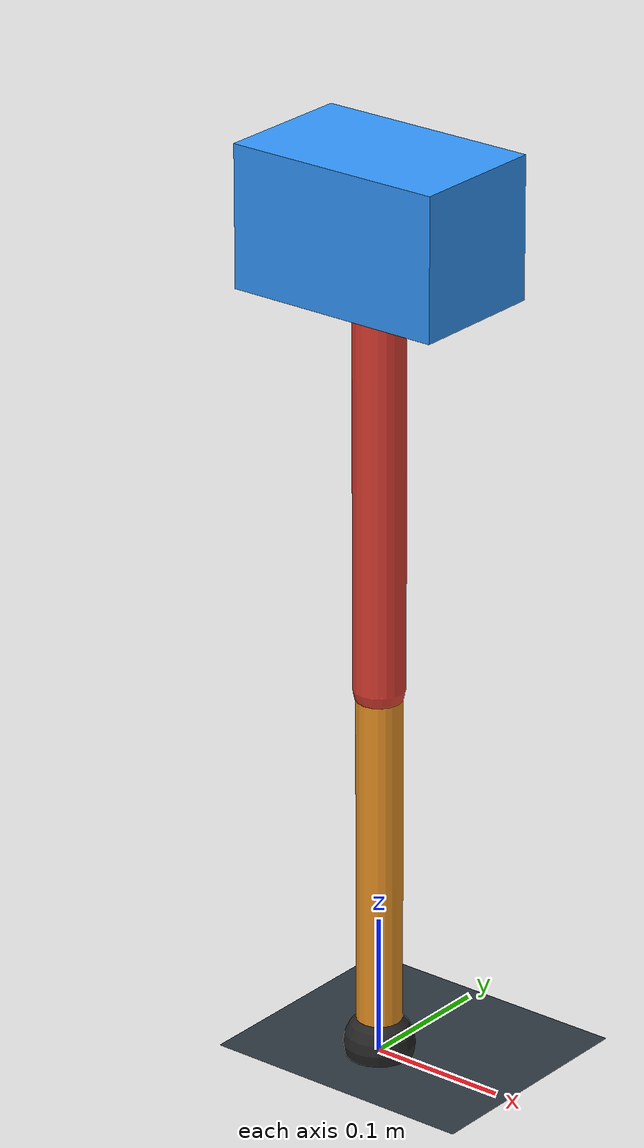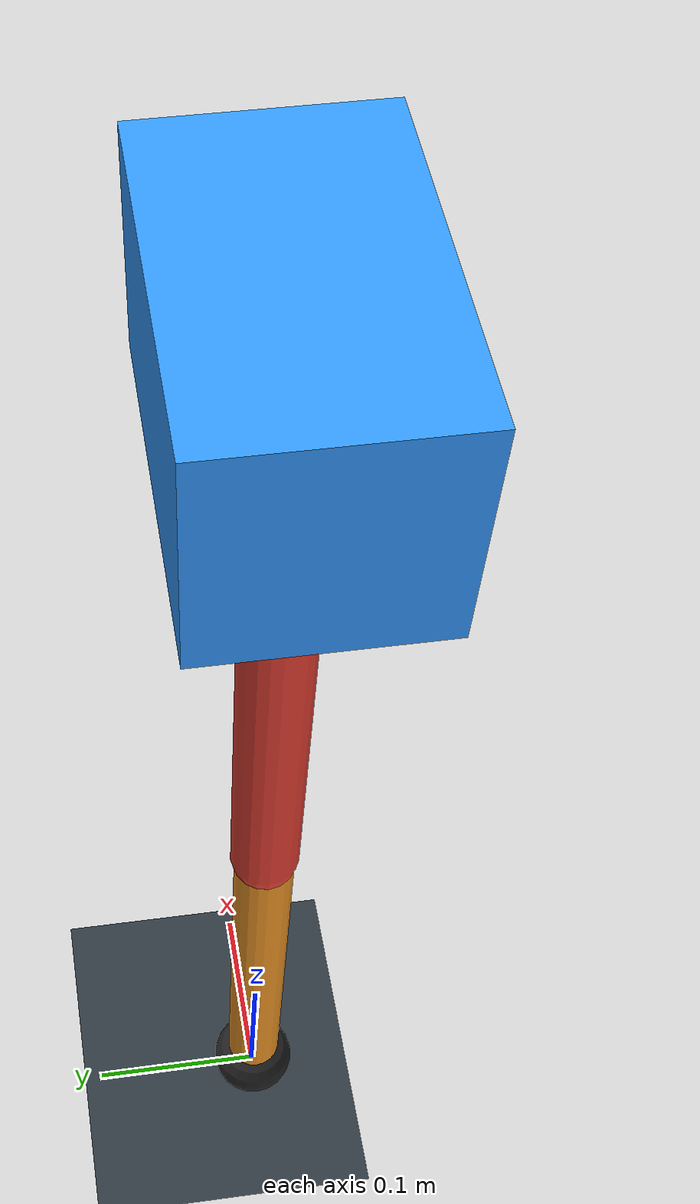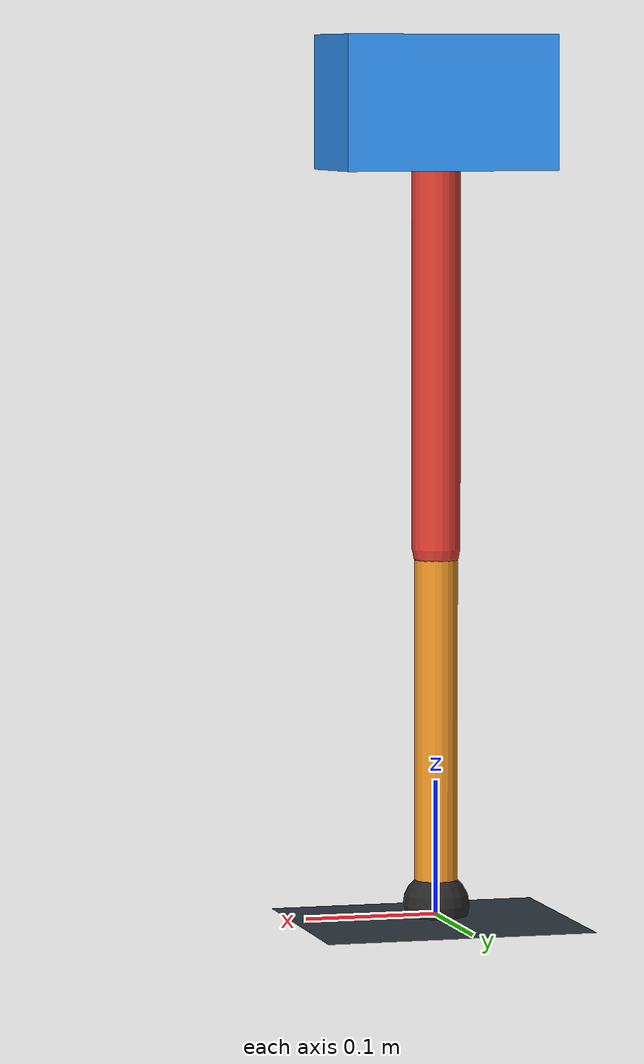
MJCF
<mujoco model="single_axis_two_bar">
  <compiler angle="radian" inertiafromgeom="true"/>
  <option timestep="0.001" integrator="implicitfast" gravity="0 0 -9.81"/>
  <default>
    <joint damping="0.08"/>
    <geom friction="1.2 0.01 0.0001" condim="3"/>
  </default>
  <worldbody>
    <geom name="floor" type="plane" size="5 5 0.1" rgba="0.18 0.22 0.25 1"/>
    <body name="carriage" pos="0 0 0.6052578835539277">
      <joint name="pole_slide" type="slide" axis="0 0 1"/>
      <geom name="payload" type="box" size="0.08 0.05 0.05" mass="2.6760084977349776" rgba="0.2 0.6 1 1"/>
      <body name="thigh" pos="0 0 0">
        <joint name="hip" type="hinge" axis="0 1 0"/>
        <geom name="thigh_link" type="capsule" fromto="0 0 0 0 0 -0.33163951110209017" size="0.018" mass="0.2362975338897415" rgba="0.9 0.25 0.2 1"/>
        <body name="shank" pos="0 0 -0.33163951110209017">
          <joint name="knee" type="hinge" axis="0 1 0"/>
          <geom name="shank_link" type="capsule" fromto="0 0 0 0 0 -0.26656449256175274" size="0.016" mass="0.18993072328924784" rgba="0.95 0.6 0.15 1"/>
          <geom name="foot" type="sphere" pos="0 0 -0.26656449256175274" size="0.025" mass="0.03" rgba="0.15 0.15 0.15 1"/>
          <site name="toe" pos="0 0 -0.26656449256175274" size="0.008"/>
        </body>
      </body>
    </body>
  </worldbody>
  <actuator>
    <motor name="hip_motor" joint="hip" ctrlrange="-46.143839466382985 46.143839466382985"/>
    <motor name="knee_motor" joint="knee" ctrlrange="-67.28088036137996 67.28088036137996"/>
  </actuator>
</mujoco>
